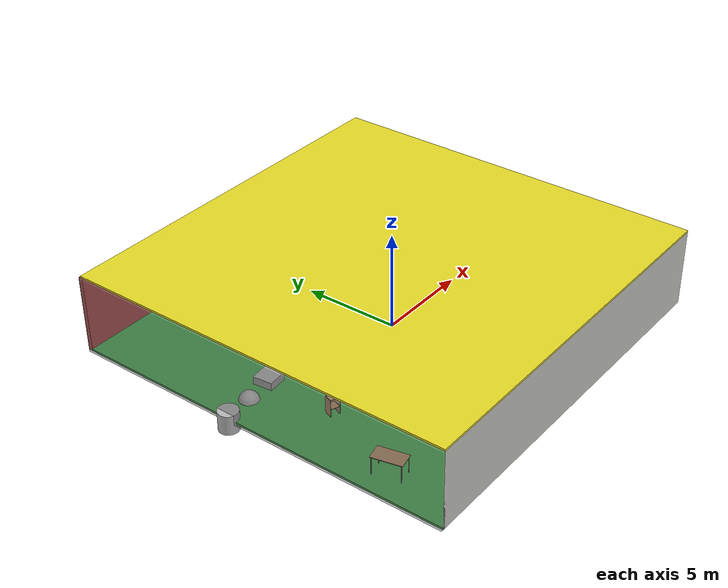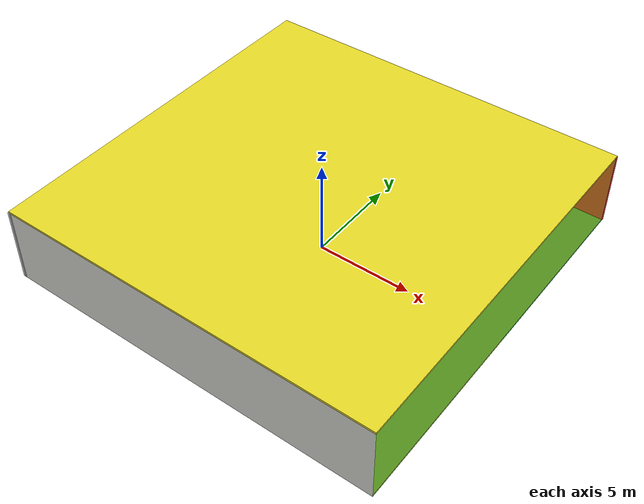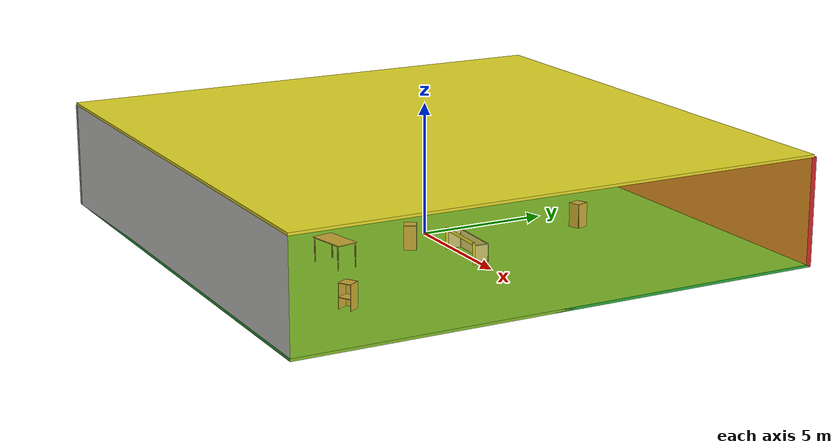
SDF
<sdf version="1.4">
 <world name="default">
  <physics type="ode">
   <max_step_size>0.001</max_step_size>
   <real_time_factor>1</real_time_factor>
   <real_time_update_rate>1000</real_time_update_rate>
   <gravity>0 0 -9.8</gravity>
  </physics>
  <scene><ambient>0.4 0.4 0.4 1</ambient><background>0.7 0.7 0.7 1</background><shadows>1</shadows></scene>
  <model name="Surrounding">
   <static>1</static>
   <link name="Ceiling">
    <collision name="Ceiling_Collision"><geometry><box><size>20 20 0.1</size></box></geometry></collision>
    <visual name="Ceiling_Visual">
     <geometry><box><size>20 20 0.1</size></box></geometry>
     <material>
      <script><uri>file://media/materials/scripts/gazebo.material</uri><name>Gazebo/YellowGlow</name></script>
     </material>
    </visual>
    <pose>0 0 4.05 0 0 0</pose>
   </link>
   <link name="Wall_South">
    <collision name="Wall_South_Collision">
     <geometry><box><size>20 0 4</size></box></geometry>
     <pose>0 0 2 0 -0 0</pose>
    </collision>
    <visual name="Wall_South_Visual">
     <pose>0 0 2 0 -0 0</pose>
     <geometry><box><size>20 0 4</size></box></geometry>
     <material>
      <script><uri>file://media/materials/scripts/gazebo.material</uri><name>Gazebo/CeilingTiled</name></script>
     </material>
    </visual>
    <velocity_decay><linear>0</linear><angular>0</angular></velocity_decay>
    <pose>0 -10 0 0 -0 0</pose>
   </link>
   <link name="Wall_East">
    <collision name="Wall_21_Collision">
     <geometry><box><size>20 0 4</size></box></geometry>
     <pose>0 0 2 0 -0 0</pose>
    </collision>
    <visual name="Wall_21_Visual">
     <pose>0 0 2 0 -0 0</pose>
     <geometry><box><size>20 0 4</size></box></geometry>
     <material>
      <script>
       <uri>file://media/materials/scripts/gazebo.material</uri>
       <name>Gazebo/YellowTransparent</name>
      </script>
     </material>
    </visual>
    <velocity_decay><linear>0</linear><angular>0</angular></velocity_decay>
    <pose>10 0 0 0 -0 1.5708</pose>
   </link>
   <link name="Wall_North">
    <collision name="Wall_22_Collision">
     <geometry><box><size>20 0.2 4</size></box></geometry>
     <pose>0 0 2 0 -0 0</pose>
    </collision>
    <visual name="Wall_22_Visual">
     <pose>0 0 2 0 -0 0</pose>
     <geometry><box><size>20 0.2 4</size></box></geometry>
     <material>
      <script><uri>file://media/materials/scripts/gazebo.material</uri><name>Gazebo/RedGlow</name></script>
     </material>
    </visual>
    <velocity_decay><linear>0</linear><angular>0</angular></velocity_decay>
    <pose>0 10 0 0 -0 0</pose>
   </link>
   <link name="Wall_West">
    <collision name="Wall_23_Collision">
     <geometry><box><size>20 0.2 4</size></box></geometry>
     <pose>0 0 2 0 -0 0</pose>
    </collision>
    <visual name="Wall_23_Visual">
     <pose>0 0 2 0 -0 0</pose>
     <geometry><box><size>20 0.2 4</size></box></geometry>
     <material>
      <script><uri>file://media/materials/scripts/gazebo.material</uri><name>Gazebo/GreyTransparent</name></script>
     </material>
    </visual>
    <velocity_decay><linear>0</linear><angular>0</angular></velocity_decay>
    <pose>-10 0 0 0 0 -1.5708</pose>
   </link>
   <link name="Ground_link">
    <collision name="collision">
     <pose>0 0 .05 0 -0 0</pose>
     <geometry><box><size>20 20 0.1</size></box></geometry>
    </collision>
    <visual name="visual">
     <pose>0 0 .05 0 -0 0</pose>
     <geometry><box><size>20 20 0.1</size></box></geometry>
     <material>
      <script><uri>file://media/materials/scripts/gazebo.material</uri><name>Gazebo/GreenGlow</name></script>
     </material>
    </visual>
   </link>
   <static>1</static>
  </model>
  <spherical_coordinates>
   <surface_model>EARTH_WGS84</surface_model>
   <latitude_deg>0</latitude_deg>
   <longitude_deg>0</longitude_deg>
   <elevation>0</elevation>
   <heading_deg>0</heading_deg>
  </spherical_coordinates>
  <light name="lightball_0" type="diffuse">
   <diffuse>0.8 0.8 0.8 1</diffuse>
   <specular>0.2 0.2 0.2 1</specular>
   <attenuation>
    <range>100</range>
    <constant>0.7</constant>
    <linear>0.01</linear>
    <quadratic>0.001</quadratic>
   </attenuation>
   <direction>-0.5 0.1 -0.9</direction>
   <pose>6.48814435762 -0.362075236168 1.12308925224 0 0 0</pose>
  </light>
  <light name="lightball_1" type="diffuse">
   <diffuse>0.8 0.8 0.8 1</diffuse>
   <specular>0.2 0.2 0.2 1</specular>
   <attenuation>
    <range>100</range>
    <constant>0.7</constant>
    <linear>0.01</linear>
    <quadratic>0.001</quadratic>
   </attenuation>
   <direction>-0.5 0.1 -0.9</direction>
   <pose>0.366940099016 -3.89873262361 3.21763356507 0 0 0</pose>
  </light>
  <light name="lightball_2" type="diffuse">
   <diffuse>0.8 0.8 0.8 1</diffuse>
   <specular>0.2 0.2 0.2 1</specular>
   <attenuation>
    <range>100</range>
    <constant>0.7</constant>
    <linear>0.01</linear>
    <quadratic>0.001</quadratic>
   </attenuation>
   <direction>-0.5 0.1 -0.9</direction>
   <pose>-3.33101664265 -9.83909546365 1.22443759043 0 0 0</pose>
  </light>
  <light name="lightball_3" type="diffuse">
   <diffuse>0.8 0.8 0.8 1</diffuse>
   <specular>0.2 0.2 0.2 1</specular>
   <attenuation>
    <range>100</range>
    <constant>0.7</constant>
    <linear>0.01</linear>
    <quadratic>0.001</quadratic>
   </attenuation>
   <direction>-0.5 0.1 -0.9</direction>
   <pose>9.67898153582 -0.878093488441 3.81795188655 0 0 0</pose>
  </light>
  <light name="lightball_4" type="diffuse">
   <diffuse>0.8 0.8 0.8 1</diffuse>
   <specular>0.2 0.2 0.2 1</specular>
   <attenuation>
    <range>100</range>
    <constant>0.7</constant>
    <linear>0.01</linear>
    <quadratic>0.001</quadratic>
   </attenuation>
   <direction>-0.5 0.1 -0.9</direction>
   <pose>4.29984253998 -4.5010601138 3.68331619131 0 0 0</pose>
  </light>
  <light name="lightball_5" type="diffuse">
   <diffuse>0.8 0.8 0.8 1</diffuse>
   <specular>0.2 0.2 0.2 1</specular>
   <attenuation>
    <range>100</range>
    <constant>0.7</constant>
    <linear>0.01</linear>
    <quadratic>0.001</quadratic>
   </attenuation>
   <direction>-0.5 0.1 -0.9</direction>
   <pose>7.28269012989 8.31600330486 2.77580198603 0 0 0</pose>
  </light>
  <light name="lightball_6" type="diffuse">
   <diffuse>0.8 0.8 0.8 1</diffuse>
   <specular>0.2 0.2 0.2 1</specular>
   <attenuation>
    <range>100</range>
    <constant>0.7</constant>
    <linear>0.01</linear>
    <quadratic>0.001</quadratic>
   </attenuation>
   <direction>-0.5 0.1 -0.9</direction>
   <pose>-1.82599832301 2.22685119769 2.98379053416 0 0 0</pose>
  </light>
  <include><uri>model://table</uri><pose>-8.63971054656 -6.37295299137 0 0 0 1.78985453376</pose></include>
  <include><uri>model://cabinet</uri><pose>-6.97050679143 -2.01240672723 0 0 0 1.21891509109</pose></include>
  <include>
   <uri>model://textured_shapes</uri>
   <pose>-8.43726563964 1.55675138088 0 0 0 1.66753571888</pose>
  </include>
  <include><uri>model://cabinet</uri><pose>-5.53121834918 2.4794465054 0 0 0 0.66536459822</pose></include>
  <include>
   <uri>model://textured_shapes</uri>
   <pose>-3.79933918651 6.70903428367 0 0 0 2.09410854416</pose>
  </include>
  <include><uri>model://table</uri><pose>2.08519283842 -4.69718512682 0 0 0 0.194082772967</pose></include>
  <include><uri>model://cabinet</uri><pose>1.66062856127 -1.49014329007 0 0 0 1.07324893942</pose></include>
  <include><uri>model://cabinet</uri><pose>2.11267035166 5.41904621543 0 0 0 0.287977000902</pose></include>
  <include>
   <uri>model://robocup_3Dsim_goal</uri>
   <pose>3.37246021421 -0.36426445708 0 0 0 1.53469293969</pose>
  </include>
  <include><uri>model://cabinet</uri><pose>6.61097274302 -6.38668455636 0 0 0 2.13336703374</pose></include>
 </world>
</sdf>

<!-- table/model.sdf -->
<sdf version="1.5">
  <model name="table">
    <static>true</static>
    <link name="link">
      <collision name="surface">
        <pose>0 0 1.0 0 0 0</pose>
        <geometry>
          <box>
            <size>1.5 0.8 0.03</size>
          </box>
        </geometry>
        <surface>
          <friction>
            <ode>
              <mu>0.6</mu>
              <mu2>0.6</mu2>
            </ode>
          </friction>
        </surface>
      </collision>
      <visual name="visual1">
        <pose>0 0 1.0 0 0 0</pose>
        <geometry>
          <box>
            <size>1.5 0.8 0.03</size>
          </box>
        </geometry>
        <material>
          <script>
            <uri>model://media/materials/scripts/gazebo.material</uri>
            <name>Gazebo/Wood</name>
          </script>
        </material>
      </visual>
      <collision name="front_left_leg">
        <pose>0.68 0.38 0.5 0 0 0</pose>
        <geometry>
          <cylinder>
            <radius>0.02</radius>
            <length>1.0</length>
          </cylinder>
        </geometry>
      </collision>
      <visual name="front_left_leg">
        <pose>0.68 0.38 0.5 0 0 0</pose>
        <geometry>
          <cylinder>
            <radius>0.02</radius>
            <length>1.0</length>
          </cylinder>
        </geometry>
        <material>
          <script>
            <uri>model://media/materials/scripts/gazebo.material</uri>
            <name>Gazebo/Grey</name>
          </script>
        </material>
      </visual>
      <collision name="front_right_leg">
        <pose>0.68 -0.38 0.5 0 0 0</pose>
        <geometry>
          <cylinder>
            <radius>0.02</radius>
            <length>1.0</length>
          </cylinder>
        </geometry>
      </collision>
      <visual name="front_right_leg">
        <pose>0.68 -0.38 0.5 0 0 0</pose>
        <geometry>
          <cylinder>
            <radius>0.02</radius>
            <length>1.0</length>
          </cylinder>
        </geometry>
        <material>
          <script>
            <uri>model://media/materials/scripts/gazebo.material</uri>
            <name>Gazebo/Grey</name>
          </script>
        </material>
      </visual>
      <collision name="back_right_leg">
        <pose>-0.68 -0.38 0.5 0 0 0</pose>
        <geometry>
          <cylinder>
            <radius>0.02</radius>
            <length>1.0</length>
          </cylinder>
        </geometry>
      </collision>
      <visual name="back_right_leg">
        <pose>-0.68 -0.38 0.5 0 0 0</pose>
        <geometry>
          <cylinder>
            <radius>0.02</radius>
            <length>1.0</length>
          </cylinder>
        </geometry>
        <material>
          <script>
            <uri>model://media/materials/scripts/gazebo.material</uri>
            <name>Gazebo/Grey</name>
          </script>
        </material>
      </visual>
      <collision name="back_left_leg">
        <pose>-0.68 0.38 0.5 0 0 0</pose>
        <geometry>
          <cylinder>
            <radius>0.02</radius>
            <length>1.0</length>
          </cylinder>
        </geometry>
      </collision>
      <visual name="back_left_leg">
        <pose>-0.68 0.38 0.5 0 0 0</pose>
        <geometry>
          <cylinder>
            <radius>0.02</radius>
            <length>1.0</length>
          </cylinder>
        </geometry>
        <material>
          <script>
            <uri>model://media/materials/scripts/gazebo.material</uri>
            <name>Gazebo/Grey</name>
          </script>
        </material>
      </visual>
    </link>
  </model>
</sdf>

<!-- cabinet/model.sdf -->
<sdf version="1.5">
  <model name="cabinet">
    <static>true</static>
    <link name="cabinet_bottom_plate">
      <inertial>
        <pose>0 0 -1 0 0 0</pose>
        <inertia>
          <ixx>2.050000</ixx>
          <ixy>0</ixy>
          <ixz>0</ixz>
          <iyy>2.050000</iyy>
          <iyz>0</iyz>
          <izz>2.050000</izz>
        </inertia>
        <mass>25.000000</mass>
      </inertial>
      <collision name="cabinet_bottom_plate_geom">
        <pose>0 0 0.010000 0 0 0</pose>
        <geometry>
          <box>
            <size>0.450000 0.450000 0.020000</size>
          </box>
        </geometry>
      </collision>
      <visual name="cabinet_bottom_plate_geom_visual">
        <pose>0 0 0.010000 0 0 0</pose>
        <geometry>
          <box>
            <size>0.450000 0.450000 0.020000</size>
          </box>
        </geometry>
        <material>
          <script>
            <uri>model://media/materials/scripts/gazebo.material</uri>
            <name>Gazebo/Wood</name>
          </script>
        </material>
      </visual>
      <collision name="cabinet_bottom_plate_geom_cabinet_back_plate">
        <pose>0.235000 0 0.510000 0 0 0</pose>
        <geometry>
          <box>
            <size>0.020000 0.450000 1.020000</size>
          </box>
        </geometry>
      </collision>
      <visual name="cabinet_bottom_plate_geom_cabinet_back_plate_visual">
        <pose>0.235000 0 0.510000 0 0 0</pose>
        <geometry>
          <box>
            <size>0.020000 0.450000 1.020000</size>
          </box>
        </geometry>
        <material>
          <script>
            <uri>model://media/materials/scripts/gazebo.material</uri>
            <name>Gazebo/Wood</name>
          </script>
        </material>
      </visual>
      <collision name="cabinet_bottom_plate_geom_cabinet_left_plate">
        <pose>0 0.235000 0.510000 0 0 0</pose>
        <geometry>
          <box>
            <size>0.450000 0.020000 1.020000</size>
          </box>
        </geometry>
      </collision>
      <visual name="cabinet_bottom_plate_geom_cabinet_left_plate_visual">
        <pose>0 0.235000 0.510000 0 0 0</pose>
        <geometry>
          <box>
            <size>0.450000 0.020000 1.020000</size>
          </box>
        </geometry>
        <material>
          <script>
            <uri>model://media/materials/scripts/gazebo.material</uri>
            <name>Gazebo/Wood</name>
          </script>
        </material>
      </visual>
      <collision name="cabinet_bottom_plate_geom_cabinet_middle_plate">
        <pose>0 0 0.510000 0 0 0</pose>
        <geometry>
          <box>
            <size>0.450000 0.450000 0.020000</size>
          </box>
        </geometry>
      </collision>
      <visual name="cabinet_bottom_plate_geom_cabinet_middle_plate_visual">
        <pose>0 0 0.510000 0 0 0</pose>
        <geometry>
          <box>
            <size>0.450000 0.450000 0.020000</size>
          </box>
        </geometry>
        <material>
          <script>
            <uri>model://media/materials/scripts/gazebo.material</uri>
            <name>Gazebo/Wood</name>
          </script>
        </material>
      </visual>
      <collision name="cabinet_bottom_plate_geom_cabinet_right_plate">
        <pose>0 -0.235000 0.510000 0 0 0</pose>
        <geometry>
          <box>
            <size>0.450000 0.020000 1.020000</size>
          </box>
        </geometry>
      </collision>
      <visual name="cabinet_bottom_plate_geom_cabinet_right_plate_visual">
        <pose>0 -0.235000 0.510000 0 0 0</pose>
        <geometry>
          <box>
            <size>0.450000 0.020000 1.020000</size>
          </box>
        </geometry>
        <material>
          <script>
            <uri>model://media/materials/scripts/gazebo.material</uri>
            <name>Gazebo/Wood</name>
          </script>
        </material>
      </visual>
      <collision name="cabinet_bottom_plate_geom_cabinet_top_plate">
        <pose>0 0 1.010000 0 0 0</pose>
        <geometry>
          <box>
            <size>0.450000 0.450000 0.020000</size>
          </box>
        </geometry>
      </collision>
      <visual name="cabinet_bottom_plate_geom_cabinet_top_plate_visual">
        <pose>0 0 1.010000 0 0 0</pose>
        <geometry>
          <box>
            <size>0.450000 0.450000 0.020000</size>
          </box>
        </geometry>
        <material>
          <script>
            <uri>model://media/materials/scripts/gazebo.material</uri>
            <name>Gazebo/Wood</name>
          </script>
        </material>
      </visual>
    </link>
  </model>
</sdf>

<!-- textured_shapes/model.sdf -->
<sdf version="1.6">
  <model name="textured_shapes">
    <pose>0 0 0.5 0 0 0</pose>
    <link name="box">
      <pose>0 -1.5 0 0 0 0</pose>
      <collision name="collision">
        <geometry>
          <box>
            <size>1 1 1</size>
          </box>
        </geometry>
      </collision>
      <visual name="visual">
        <geometry>
          <box>
            <size>1 1 1</size>
          </box>
        </geometry>
        <material>
          <script>
            <uri>model://../model_source/models/textured_shapes/materials/scripts</uri>
            <uri>model://../model_source/models/textured_shapes/materials/textures</uri>
            <name>TexturedShape/Squares</name>
          </script>
        </material>
      </visual>
    </link>
    <link name="sphere">
      <collision name="collision">
        <geometry>
          <sphere>
            <radius>0.5</radius>
          </sphere>
        </geometry>
      </collision>
      <visual name="visual">
        <geometry>
          <sphere>
            <radius>0.5</radius>
          </sphere>
        </geometry>
        <material>
          <script>
            <uri>model://../model_source/models/textured_shapes/materials/scripts</uri>
            <uri>model://../model_source/models/textured_shapes/materials/textures</uri>
            <name>TexturedShape/Squares</name>
          </script>
        </material>
      </visual>
    </link>
    <link name="cylinder">
      <pose>0 1.5 0 0 0 0</pose>
      <collision name="collision">
        <geometry>
          <cylinder>
            <radius>0.5</radius>
            <length>1</length>
          </cylinder>
        </geometry>
      </collision>
      <visual name="visual">
        <geometry>
          <cylinder>
            <radius>0.5</radius>
            <length>1</length>
          </cylinder>
        </geometry>
        <material>
          <script>
            <uri>model://../model_source/models/textured_shapes/materials/scripts</uri>
            <uri>model://../model_source/models/textured_shapes/materials/textures</uri>
            <name>TexturedShape/Squares</name>
          </script>
        </material>
      </visual>
    </link>
  </model>
</sdf>

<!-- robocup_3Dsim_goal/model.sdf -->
<sdf version="1.5">
  <model name="robocup_3d_goal">
    <static>true</static>
    <link name="left_post">
      <pose>0 1.05 0.45 0 0 0</pose>
      <collision name="collision">
        <geometry>
          <cylinder>
            <radius>0.05</radius>
            <length>0.9</length>
          </cylinder>
        </geometry>
      </collision>
      <visual name="visual">
        <geometry>
          <cylinder>
            <radius>0.05</radius>
            <length>0.9</length>
          </cylinder>
        </geometry>
        <material>
          <script>
            <uri>file://media/materials/scripts/gazebo.material</uri>
            <name>Gazebo/ZincYellow</name>
          </script>
        </material>
      </visual>
    </link>
    <link name="left_support_horiz_lower">
      <pose>0.30 1.05 0.01 0 0 0</pose>
      <collision name="collision">
        <geometry>
          <box>
            <size>0.50 0.02 0.02</size>
          </box>
        </geometry>
      </collision>
      <visual name="visual">
        <geometry>
          <box>
            <size>0.50 0.02 0.02</size>
          </box>
        </geometry>
        <material>
          <script>
            <uri>file://media/materials/scripts/gazebo.material</uri>
            <name>Gazebo/White</name>
          </script>
        </material>
      </visual>
    </link>
    <link name="left_support_horiz_upper">
      <pose>0.30 1.05 0.79 0 0 0</pose>
      <collision name="collision">
        <geometry>
          <box>
            <size>0.50 0.02 0.02</size>
          </box>
        </geometry>
      </collision>
      <visual name="visual">
        <geometry>
          <box>
            <size>0.50 0.02 0.02</size>
          </box>
        </geometry>
        <material>
          <script>
            <uri>file://media/materials/scripts/gazebo.material</uri>
            <name>Gazebo/White</name>
          </script>
        </material>
      </visual>
    </link>
    <link name="left_support_vertical">
      <pose>0.56 1.05 0.4 0 1.5708 0</pose>
      <collision name="collision">
        <geometry>
          <box>
            <size>0.80 0.02 0.02</size>
          </box>
        </geometry>
      </collision>
      <visual name="visual">
        <geometry>
          <box>
            <size>0.80 0.02 0.02</size>
          </box>
        </geometry>
        <material>
          <script>
            <uri>file://media/materials/scripts/gazebo.material</uri>
            <name>Gazebo/White</name>
          </script>
        </material>
      </visual>
    </link>
    <link name="right_support_horiz_lower">
      <pose>0.30 -1.05 0.01 0 0 0</pose>
      <collision name="collision">
        <geometry>
          <box>
            <size>0.50 0.02 0.02</size>
          </box>
        </geometry>
      </collision>
      <visual name="visual">
        <geometry>
          <box>
            <size>0.50 0.02 0.02</size>
          </box>
        </geometry>
        <material>
          <script>
            <uri>file://media/materials/scripts/gazebo.material</uri>
            <name>Gazebo/White</name>
          </script>
        </material>
      </visual>
    </link>
    <link name="right_support_horiz_upper">
      <pose>0.30 -1.05 0.79 0 0 0</pose>
      <collision name="collision">
        <geometry>
          <box>
            <size>0.50 0.02 0.02</size>
          </box>
        </geometry>
      </collision>
      <visual name="visual">
        <geometry>
          <box>
            <size>0.50 0.02 0.02</size>
          </box>
        </geometry>
        <material>
          <script>
            <uri>file://media/materials/scripts/gazebo.material</uri>
            <name>Gazebo/White</name>
          </script>
        </material>
      </visual>
    </link>
    <link name="right_support_vertical">
      <pose>0.56 -1.05 0.4 0 1.5708 0</pose>
      <collision name="collision">
        <geometry>
          <box>
            <size>0.80 0.02 0.02</size>
          </box>
        </geometry>
      </collision>
      <visual name="visual">
        <geometry>
          <box>
            <size>0.80 0.02 0.02</size>
          </box>
        </geometry>
        <material>
          <script>
            <uri>file://media/materials/scripts/gazebo.material</uri>
            <name>Gazebo/White</name>
          </script>
        </material>
      </visual>
    </link>
    <link name="center_support_horiz_lower">
      <pose>0.56 0 0.01 0 1.5708 0</pose>
      <collision name="collision">
        <geometry>
          <box>
            <size>0.02 2.08 0.02</size>
          </box>
        </geometry>
      </collision>
      <visual name="visual">
        <geometry>
          <box>
            <size>0.02 2.08 0.02</size>
          </box>
        </geometry>
        <material>
          <script>
            <uri>file://media/materials/scripts/gazebo.material</uri>
            <name>Gazebo/White</name>
          </script>
        </material>
      </visual>
    </link>
    <link name="center_support_horiz_upper">
      <pose>0.56 0 0.79 0 1.5708 0</pose>
      <collision name="collision">
        <geometry>
          <box>
            <size>0.02 2.08 0.02</size>
          </box>
        </geometry>
      </collision>
      <visual name="visual">
        <geometry>
          <box>
            <size>0.02 2.08 0.02</size>
          </box>
        </geometry>
        <material>
          <script>
            <uri>file://media/materials/scripts/gazebo.material</uri>
            <name>Gazebo/White</name>
          </script>
        </material>
      </visual>
    </link>
    <link name="right_post">
      <pose>0 -1.05 0.45 0 0 0</pose>
      <collision name="collision">
        <geometry>
          <cylinder>
            <radius>0.05</radius>
            <length>0.9</length>
          </cylinder>
        </geometry>
      </collision>
      <visual name="visual">
        <geometry>
          <cylinder>
            <radius>0.05</radius>
            <length>0.9</length>
          </cylinder>
        </geometry>
        <material>
          <script>
            <uri>file://media/materials/scripts/gazebo.material</uri>
            <name>Gazebo/ZincYellow</name>
          </script>
        </material>
      </visual>
    </link>
    <link name="crossbar">
      <pose>0 0 0.85 1.57 1.57 0</pose>
      <collision name="collision">
        <geometry>
          <cylinder>
            <radius>0.05</radius>
            <length>2.0</length>
          </cylinder>
        </geometry>
      </collision>
      <visual name="visual">
        <geometry>
          <cylinder>
            <radius>0.05</radius>
            <length>2.0</length>
          </cylinder>
        </geometry>
        <material>
          <script>
            <uri>file://media/materials/scripts/gazebo.material</uri>
            <name>Gazebo/ZincYellow</name>
          </script>
        </material>
      </visual>
    </link>
    <link name="center_net">
      <pose>0.56 0 0.40 0 0 0</pose>
      <collision name="collision">
        <geometry>
          <box>
            <size>0.01 2.1 0.80</size>
          </box>
        </geometry>
      </collision>
      <visual name="visual">
        <geometry>
          <box>
            <size>0.01 2.1 0.80</size>
          </box>
        </geometry>
        <material>
          <script>
            <uri>model://../model_source/models/robocup09_spl_field/materials/scripts/</uri>
            <uri>model://../model_source/models/robocup09_spl_field/materials/textures/</uri>
            <name>RoboCup/Net</name>
          </script>
        </material>
      </visual>
    </link>
    <link name="left_net">
      <pose>0.30 1.05 0.40 0 0 0</pose>
      <collision name="collision">
        <geometry>
          <box>
            <size>0.50 0.01 0.76</size>
          </box>
        </geometry>
      </collision>
      <visual name="visual">
        <geometry>
          <box>
            <size>0.50 0.01 0.76</size>
          </box>
        </geometry>
        <material>
          <script>
            <uri>model://../model_source/models/robocup09_spl_field/materials/scripts/</uri>
            <uri>model://../model_source/models/robocup09_spl_field/materials/textures/</uri>
            <name>RoboCup/Net</name>
          </script>
        </material>
      </visual>
    </link>
    <link name="right_net">
      <pose>0.30 -1.05 0.40 0 0 0</pose>
      <collision name="collision">
        <geometry>
          <box>
            <size>0.50 0.01 0.76</size>
          </box>
        </geometry>
      </collision>
      <visual name="visual">
        <geometry>
          <box>
            <size>0.50 0.01 0.76</size>
          </box>
        </geometry>
        <material>
          <script>
            <uri>model://../model_source/models/robocup09_spl_field/materials/scripts/</uri>
            <uri>model://../model_source/models/robocup09_spl_field/materials/textures/</uri>
            <name>RoboCup/Net</name>
          </script>
        </material>
      </visual>
    </link>
  </model>
</sdf>
